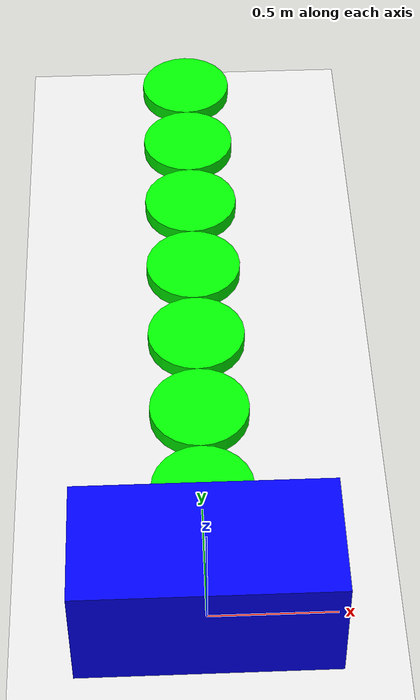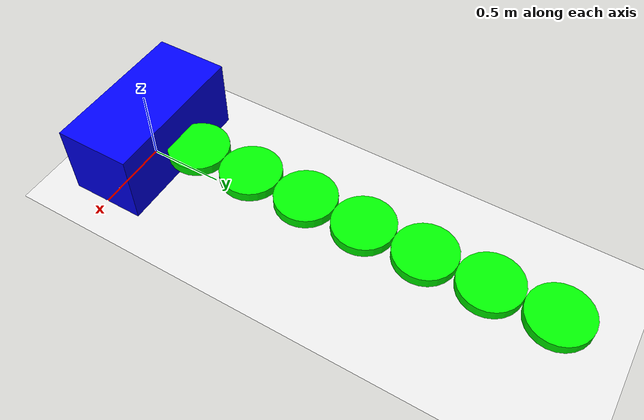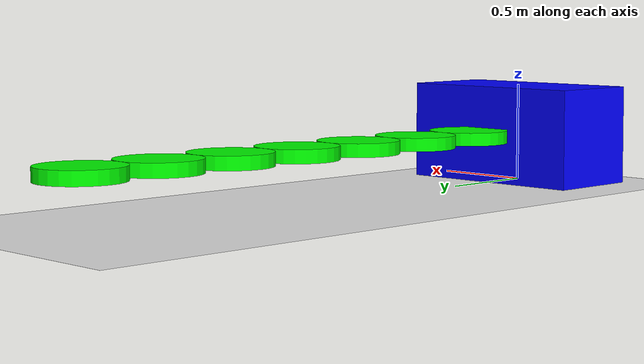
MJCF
<mujoco><worldbody><light diffuse=".5 .5 .5" pos="0 0 3" dir="0 0 -1" /><geom name="ground" type="plane" size="5 5 0.1" rgba=".9 .9 .9 1" /><body name="body"><freejoint name="root" /><geom name="torso" type="box" size="0.5 0.25 0.25" pos="0 0 0.25" rgba="0 0 1 1" mass="0.1" /><body name="wing0" pos="0 0.4 0.25" euler="0 0 90"><joint name="wing0link" type="hinge" axis="0 0 1" range="-1 1" /><geom name="wing0" type="cylinder" size="0.2 0.0325" pos="0 0 0" rgba="0 1 0 1" mass="1" /><body name="wing1" euler="0 0 0"><body name="wing2" euler="0 0 0"><body name="wing3" euler="0 0 0"><body name="wing4" euler="0 0 0"><body name="wing5" euler="0 0 0"><body name="wing6" euler="0 0 0" /><joint name="wing6link" type="hinge" pos="0 0 0" axis="1 0 0" range="-44 44" /><geom name="wing6" type="cylinder" size="0.2 0.0325" pos="2.4000000000000004 0 0" rgba="0 1 0 1" mass="1.5" /></body><joint name="wing5link" type="hinge" pos="0 0 0" axis="1 0 0" range="-30 30" /><geom name="wing5" type="cylinder" size="0.2 0.0325" pos="2.0 0 0" rgba="0 1 0 1" mass="1.5" /></body><joint name="wing4link" type="hinge" pos="0 0 0" axis="1 0 0" range="-58 58" /><geom name="wing4" type="cylinder" size="0.2 0.0325" pos="1.6 0 0" rgba="0 1 0 1" mass="1.5" /></body><joint name="wing3link" type="hinge" pos="0 0 0" axis="1 0 0" range="-10 10" /><geom name="wing3" type="cylinder" size="0.2 0.0325" pos="1.2000000000000002 0 0" rgba="0 1 0 1" mass="1.5" /></body><joint name="wing2link" type="hinge" pos="0 0 0" axis="1 0 0" range="-17 17" /><geom name="wing2" type="cylinder" size="0.2 0.0325" pos="0.8 0 0" rgba="0 1 0 1" mass="1.5" /></body><joint name="wing1link" type="hinge" pos="0 0 0" axis="1 0 0" range="-90 90" /><geom name="wing1" type="cylinder" size="0.2 0.0325" pos="0.4 0 0" rgba="0 1 0 1" mass="1.5" /></body></body></worldbody><actuator><motor name="wing0m" joint="wing0link" gear="54" ctrllimited="true" ctrlrange="-5 5" /><motor name="wing1m" joint="wing1link" gear="98" ctrllimited="true" ctrlrange="-5 5" /><motor name="wing2m" joint="wing2link" gear="68" ctrllimited="true" ctrlrange="-5 5" /><motor name="wing3m" joint="wing3link" gear="18" ctrllimited="true" ctrlrange="-5 5" /><motor name="wing4m" joint="wing4link" gear="62" ctrllimited="true" ctrlrange="-5 5" /><motor name="wing5m" joint="wing5link" gear="74" ctrllimited="true" ctrlrange="-5 5" /><motor name="wing6m" joint="wing6link" gear="80" ctrllimited="true" ctrlrange="-5 5" /></actuator></mujoco>
